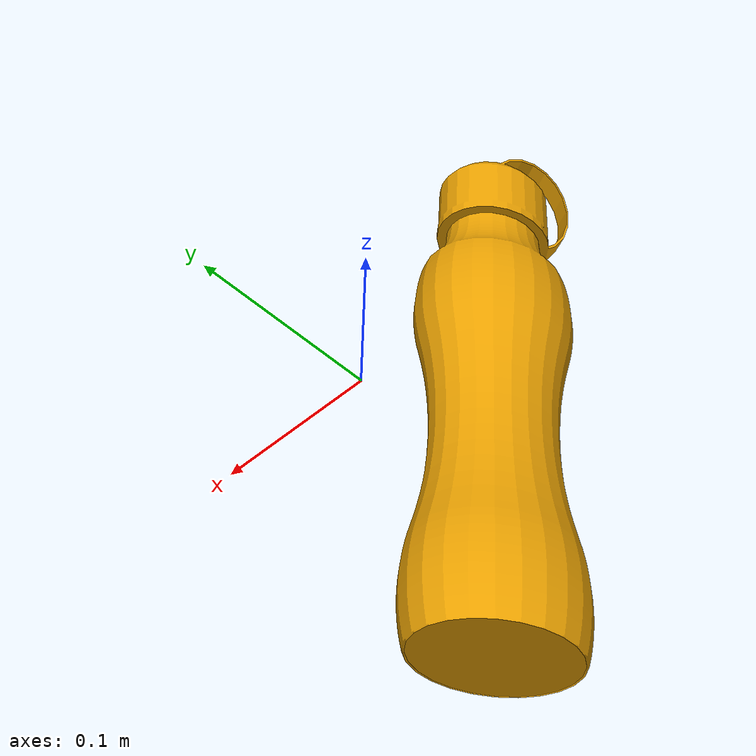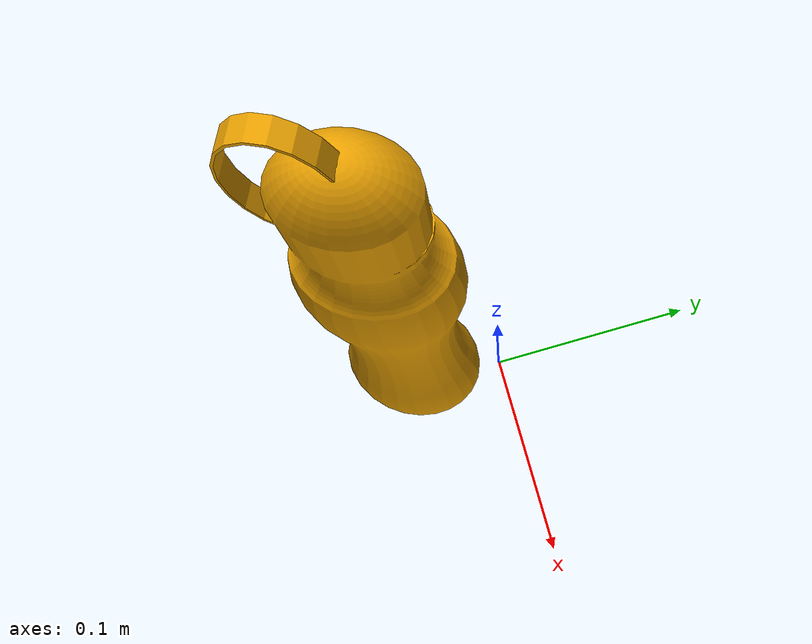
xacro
<?xml version="1.0"?>
<robot name="remote" xmlns:xacro="http://www.ros.org/wiki/xacro">

<material name="violet">
  <color rgba="0.74 0.1 0.78 0.9"/>
</material>

<link name="object" >
  <inertial>
    <mass value="2.07047"/>
    <inertia ixx="0.00933153" ixy="-3.87986e-05" ixz="0.002764" iyy="0.0110877" iyz="0.000300351" izz="0.00918888"/>
    <origin rpy="0 0 0" xyz="0.01263 0 0.07498"/>
  </inertial>
  <visual>
    <geometry>
      <mesh filename="file:///home/pardon/handover_ws_sim/src/objects_to_handover/meshes/bottle.dae" scale="1 1 1" />
      <material name="violet"/>
    </geometry>
  </visual>
  <collision>
    <geometry>
      <mesh filename="file:///home/pardon/handover_ws_sim/src/objects_to_handover/meshes/bottle.dae" scale="1 1 1"/>
    </geometry>
    <origin rpy="0 0 0" xyz="0 0 0"/>
  </collision>
</link>

</robot>
